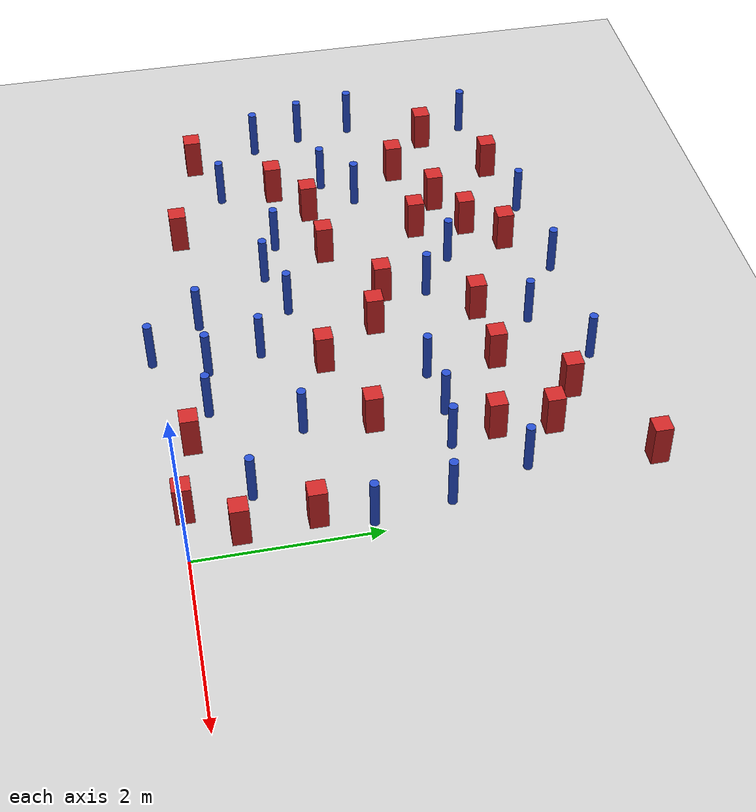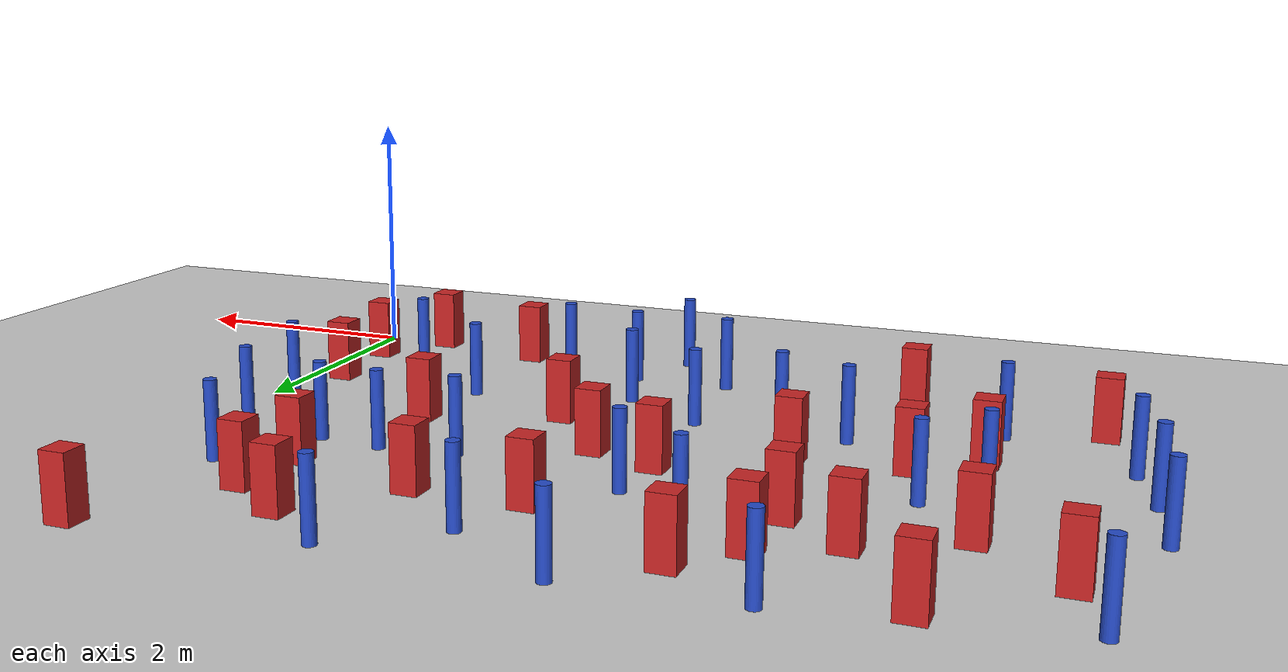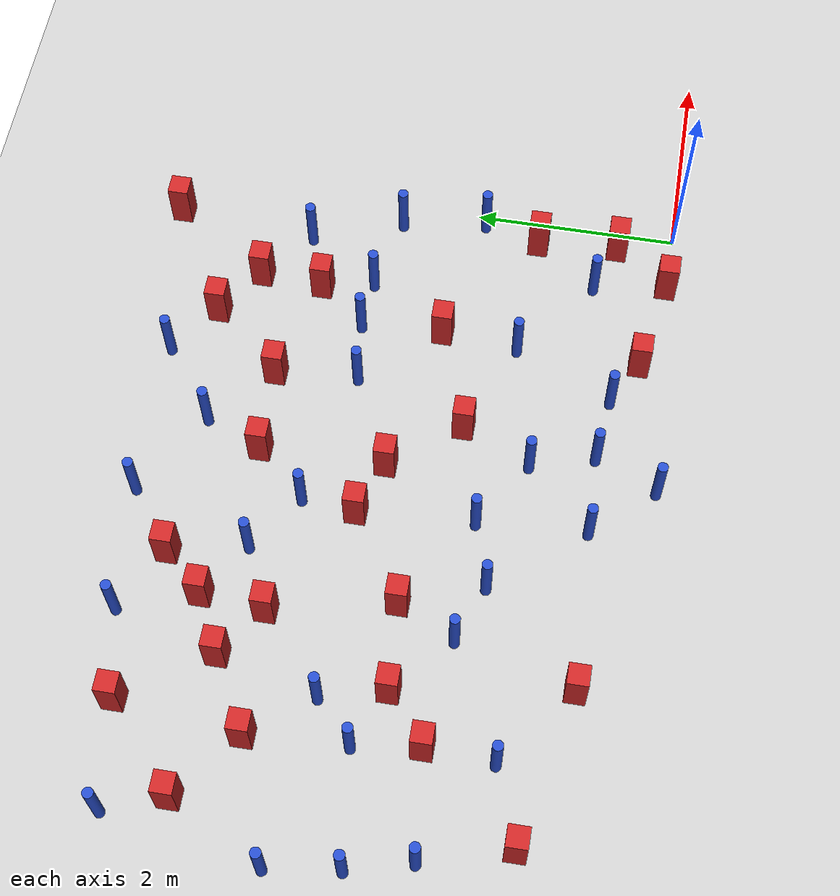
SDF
<sdf version="1.6">
 <world name="default">
  <model name="ground_plane">
   <static>1</static>
   <link name="link">
    <collision name="collision">
     <geometry><plane><normal>0 0 1</normal><size>100 100</size></plane></geometry>
     <surface><friction><ode><mu>100</mu><mu2>50</mu2></ode></friction></surface>
    </collision>
    <visual name="visual">
     <cast_shadows>0</cast_shadows>
     <geometry><plane><normal>0 0 1</normal><size>100 100</size></plane></geometry>
     <material>
      <ambient>1.0 1.0 1.0 1.0</ambient>
      <diffuse>0.8 0.8 0.8 1.0</diffuse>
      <specular>0.01 0.01 0.01 1.000000</specular>
     </material>
    </visual>
   </link>
  </model>
  <model name="NamedLocations">
   <static>true</static>
   <link name="DefaultStart"><pose>8.5 0 0 0 0 3.14</pose></link>
  </model>
  <model name="square_post_obstacle0">
   <static>true</static>
   <pose>-4.59971297543 3.89152151144 -6.11067671241e-07 -5.50515727128e-06 -8.79689657224e-07 2.37013304536e-05</pose>
   <link name="link">
    <pose>0 0 0.25 0 -0 0</pose>
    <inertial>
     <mass>100</mass>
     <inertia>
      <ixx>0.166667</ixx>
      <ixy>0</ixy>
      <ixz>0</ixz>
      <iyy>0.166667</iyy>
      <iyz>0</iyz>
      <izz>0.166667</izz>
     </inertia>
    </inertial>
    <collision name="collision"><geometry><box><size>.2 .2 .5</size></box></geometry></collision>
    <visual name="visual">
     <geometry><box><size>.2 .2 .5</size></box></geometry>
     <material>
      <script><name>Gazebo/Red</name><uri>file://media/materials/scripts/gazebo.material</uri></script>
     </material>
    </visual>
   </link>
  </model>
  <model name="square_post_obstacle5">
   <static>true</static>
   <pose>-5.14528673574 3.61344387277 -6.11067671241e-07 -5.50515727128e-06 -8.79689657224e-07 2.37013304536e-05</pose>
   <link name="link">
    <pose>0 0 0.25 0 -0 0</pose>
    <inertial>
     <mass>100</mass>
     <inertia>
      <ixx>0.166667</ixx>
      <ixy>0</ixy>
      <ixz>0</ixz>
      <iyy>0.166667</iyy>
      <iyz>0</iyz>
      <izz>0.166667</izz>
     </inertia>
    </inertial>
    <collision name="collision"><geometry><box><size>.2 .2 .5</size></box></geometry></collision>
    <visual name="visual">
     <geometry><box><size>.2 .2 .5</size></box></geometry>
     <material>
      <script><name>Gazebo/Red</name><uri>file://media/materials/scripts/gazebo.material</uri></script>
     </material>
    </visual>
   </link>
  </model>
  <model name="pole_obstacle8">
   <static>true</static>
   <pose>-5.80131505727 2.28319129758 -9.47619616065e-06 5.49618799738e-07 2.36310414051e-07 -1.55090534805e-07</pose>
   <link name="link">
    <pose>0 0 0.3 0 -0 0</pose>
    <inertial>
     <mass>1</mass>
     <inertia><ixx>0.145833</ixx><ixy>0</ixy><ixz>0</ixz><iyy>0.145833</iyy><iyz>0</iyz><izz>0.125</izz></inertia>
    </inertial>
    <collision name="collision">
     <geometry><cylinder><radius>0.05</radius><length>.6</length></cylinder></geometry>
    </collision>
    <visual name="visual">
     <geometry><cylinder><radius>0.05</radius><length>.6</length></cylinder></geometry>
     <material>
      <script><name>Gazebo/Blue</name><uri>file://media/materials/scripts/gazebo.material</uri></script>
     </material>
    </visual>
   </link>
  </model>
  <model name="square_post_obstacle17">
   <static>true</static>
   <pose>-4.97605530294 0.397946088873 -6.11067671241e-07 -5.50515727128e-06 -8.79689657224e-07 2.37013304536e-05</pose>
   <link name="link">
    <pose>0 0 0.25 0 -0 0</pose>
    <inertial>
     <mass>100</mass>
     <inertia>
      <ixx>0.166667</ixx>
      <ixy>0</ixy>
      <ixz>0</ixz>
      <iyy>0.166667</iyy>
      <iyz>0</iyz>
      <izz>0.166667</izz>
     </inertia>
    </inertial>
    <collision name="collision"><geometry><box><size>.2 .2 .5</size></box></geometry></collision>
    <visual name="visual">
     <geometry><box><size>.2 .2 .5</size></box></geometry>
     <material>
      <script><name>Gazebo/Red</name><uri>file://media/materials/scripts/gazebo.material</uri></script>
     </material>
    </visual>
   </link>
  </model>
  <model name="pole_obstacle10">
   <static>true</static>
   <pose>-0.569666834816 3.63471088129 -9.47619616065e-06 5.49618799737e-07 2.36310414066e-07 -1.55090534797e-07</pose>
   <link name="link">
    <pose>0 0 0.3 0 -0 0</pose>
    <inertial>
     <mass>1</mass>
     <inertia><ixx>0.145833</ixx><ixy>0</ixy><ixz>0</ixz><iyy>0.145833</iyy><iyz>0</iyz><izz>0.125</izz></inertia>
    </inertial>
    <collision name="collision">
     <geometry><cylinder><radius>0.05</radius><length>.6</length></cylinder></geometry>
    </collision>
    <visual name="visual">
     <geometry><cylinder><radius>0.05</radius><length>.6</length></cylinder></geometry>
     <material>
      <script><name>Gazebo/Blue</name><uri>file://media/materials/scripts/gazebo.material</uri></script>
     </material>
    </visual>
   </link>
  </model>
  <model name="square_post_obstacle26">
   <static>true</static>
   <pose>-1.48058931634 2.1476353197 -6.11067671241e-07 -5.50515727128e-06 -8.79689657224e-07 2.37013304536e-05</pose>
   <link name="link">
    <pose>0 0 0.25 0 -0 0</pose>
    <inertial>
     <mass>100</mass>
     <inertia>
      <ixx>0.166667</ixx>
      <ixy>0</ixy>
      <ixz>0</ixz>
      <iyy>0.166667</iyy>
      <iyz>0</iyz>
      <izz>0.166667</izz>
     </inertia>
    </inertial>
    <collision name="collision"><geometry><box><size>.2 .2 .5</size></box></geometry></collision>
    <visual name="visual">
     <geometry><box><size>.2 .2 .5</size></box></geometry>
     <material>
      <script><name>Gazebo/Red</name><uri>file://media/materials/scripts/gazebo.material</uri></script>
     </material>
    </visual>
   </link>
  </model>
  <model name="square_post_obstacle28">
   <static>true</static>
   <pose>-5.69607947928 4.42945014952 -6.11067671241e-07 -5.50515727128e-06 -8.79689657224e-07 2.37013304536e-05</pose>
   <link name="link">
    <pose>0 0 0.25 0 -0 0</pose>
    <inertial>
     <mass>100</mass>
     <inertia>
      <ixx>0.166667</ixx>
      <ixy>0</ixy>
      <ixz>0</ixz>
      <iyy>0.166667</iyy>
      <iyz>0</iyz>
      <izz>0.166667</izz>
     </inertia>
    </inertial>
    <collision name="collision"><geometry><box><size>.2 .2 .5</size></box></geometry></collision>
    <visual name="visual">
     <geometry><box><size>.2 .2 .5</size></box></geometry>
     <material>
      <script><name>Gazebo/Red</name><uri>file://media/materials/scripts/gazebo.material</uri></script>
     </material>
    </visual>
   </link>
  </model>
  <model name="square_post_obstacle29">
   <static>true</static>
   <pose>-4.40070211339 2.09543112315 -6.11067671241e-07 -5.50515727128e-06 -8.79689657224e-07 2.37013304536e-05</pose>
   <link name="link">
    <pose>0 0 0.25 0 -0 0</pose>
    <inertial>
     <mass>100</mass>
     <inertia>
      <ixx>0.166667</ixx>
      <ixy>0</ixy>
      <ixz>0</ixz>
      <iyy>0.166667</iyy>
      <iyz>0</iyz>
      <izz>0.166667</izz>
     </inertia>
    </inertial>
    <collision name="collision"><geometry><box><size>.2 .2 .5</size></box></geometry></collision>
    <visual name="visual">
     <geometry><box><size>.2 .2 .5</size></box></geometry>
     <material>
      <script><name>Gazebo/Red</name><uri>file://media/materials/scripts/gazebo.material</uri></script>
     </material>
    </visual>
   </link>
  </model>
  <model name="square_post_obstacle31">
   <static>true</static>
   <pose>-5.23875331345 2.03464342423 -6.11067671241e-07 -5.50515727128e-06 -8.79689657224e-07 2.37013304536e-05</pose>
   <link name="link">
    <pose>0 0 0.25 0 -0 0</pose>
    <inertial>
     <mass>100</mass>
     <inertia>
      <ixx>0.166667</ixx>
      <ixy>0</ixy>
      <ixz>0</ixz>
      <iyy>0.166667</iyy>
      <iyz>0</iyz>
      <izz>0.166667</izz>
     </inertia>
    </inertial>
    <collision name="collision"><geometry><box><size>.2 .2 .5</size></box></geometry></collision>
    <visual name="visual">
     <geometry><box><size>.2 .2 .5</size></box></geometry>
     <material>
      <script><name>Gazebo/Red</name><uri>file://media/materials/scripts/gazebo.material</uri></script>
     </material>
    </visual>
   </link>
  </model>
  <model name="pole_obstacle25">
   <static>true</static>
   <pose>-4.68158163636 1.53399339681 -9.47619616065e-06 5.49618799738e-07 2.36310414071e-07 -1.55090534796e-07</pose>
   <link name="link">
    <pose>0 0 0.3 0 -0 0</pose>
    <inertial>
     <mass>1</mass>
     <inertia><ixx>0.145833</ixx><ixy>0</ixy><ixz>0</ixz><iyy>0.145833</iyy><iyz>0</iyz><izz>0.125</izz></inertia>
    </inertial>
    <collision name="collision">
     <geometry><cylinder><radius>0.05</radius><length>.6</length></cylinder></geometry>
    </collision>
    <visual name="visual">
     <geometry><cylinder><radius>0.05</radius><length>.6</length></cylinder></geometry>
     <material>
      <script><name>Gazebo/Blue</name><uri>file://media/materials/scripts/gazebo.material</uri></script>
     </material>
    </visual>
   </link>
  </model>
  <model name="pole_obstacle30">
   <static>true</static>
   <pose>-2.64074661271 0.489076026434 -9.47619616065e-06 5.49618799737e-07 2.36310414078e-07 -1.55090534791e-07</pose>
   <link name="link">
    <pose>0 0 0.3 0 -0 0</pose>
    <inertial>
     <mass>1</mass>
     <inertia><ixx>0.145833</ixx><ixy>0</ixy><ixz>0</ixz><iyy>0.145833</iyy><iyz>0</iyz><izz>0.125</izz></inertia>
    </inertial>
    <collision name="collision">
     <geometry><cylinder><radius>0.05</radius><length>.6</length></cylinder></geometry>
    </collision>
    <visual name="visual">
     <geometry><cylinder><radius>0.05</radius><length>.6</length></cylinder></geometry>
     <material>
      <script><name>Gazebo/Blue</name><uri>file://media/materials/scripts/gazebo.material</uri></script>
     </material>
    </visual>
   </link>
  </model>
  <model name="pole_obstacle31">
   <static>true</static>
   <pose>-6.87298063366 2.15020737367 -9.47619616065e-06 5.49618799738e-07 2.36310414051e-07 -1.55090534805e-07</pose>
   <link name="link">
    <pose>0 0 0.3 0 -0 0</pose>
    <inertial>
     <mass>1</mass>
     <inertia><ixx>0.145833</ixx><ixy>0</ixy><ixz>0</ixz><iyy>0.145833</iyy><iyz>0</iyz><izz>0.125</izz></inertia>
    </inertial>
    <collision name="collision">
     <geometry><cylinder><radius>0.05</radius><length>.6</length></cylinder></geometry>
    </collision>
    <visual name="visual">
     <geometry><cylinder><radius>0.05</radius><length>.6</length></cylinder></geometry>
     <material>
      <script><name>Gazebo/Blue</name><uri>file://media/materials/scripts/gazebo.material</uri></script>
     </material>
    </visual>
   </link>
  </model>
  <model name="square_post_obstacle38">
   <static>true</static>
   <pose>-1.1324689584 3.42243651199 -6.11067671241e-07 -5.50515727128e-06 -8.79689657224e-07 2.37013304536e-05</pose>
   <link name="link">
    <pose>0 0 0.25 0 -0 0</pose>
    <inertial>
     <mass>100</mass>
     <inertia>
      <ixx>0.166667</ixx>
      <ixy>0</ixy>
      <ixz>0</ixz>
      <iyy>0.166667</iyy>
      <iyz>0</iyz>
      <izz>0.166667</izz>
     </inertia>
    </inertial>
    <collision name="collision"><geometry><box><size>.2 .2 .5</size></box></geometry></collision>
    <visual name="visual">
     <geometry><box><size>.2 .2 .5</size></box></geometry>
     <material>
      <script><name>Gazebo/Red</name><uri>file://media/materials/scripts/gazebo.material</uri></script>
     </material>
    </visual>
   </link>
  </model>
  <model name="pole_obstacle43">
   <static>true</static>
   <pose>-3.64300508304 4.73870815015 -9.47619616065e-06 5.49618799738e-07 2.3631041406e-07 -1.55090534801e-07</pose>
   <link name="link">
    <pose>0 0 0.3 0 -0 0</pose>
    <inertial>
     <mass>1</mass>
     <inertia><ixx>0.145833</ixx><ixy>0</ixy><ixz>0</ixz><iyy>0.145833</iyy><iyz>0</iyz><izz>0.125</izz></inertia>
    </inertial>
    <collision name="collision">
     <geometry><cylinder><radius>0.05</radius><length>.6</length></cylinder></geometry>
    </collision>
    <visual name="visual">
     <geometry><cylinder><radius>0.05</radius><length>.6</length></cylinder></geometry>
     <material>
      <script><name>Gazebo/Blue</name><uri>file://media/materials/scripts/gazebo.material</uri></script>
     </material>
    </visual>
   </link>
  </model>
  <model name="pole_obstacle49">
   <static>true</static>
   <pose>-3.49157227733 1.51842171549 -9.47619616065e-06 5.49618799737e-07 2.36310414072e-07 -1.55090534793e-07</pose>
   <link name="link">
    <pose>0 0 0.3 0 -0 0</pose>
    <inertial>
     <mass>1</mass>
     <inertia><ixx>0.145833</ixx><ixy>0</ixy><ixz>0</ixz><iyy>0.145833</iyy><iyz>0</iyz><izz>0.125</izz></inertia>
    </inertial>
    <collision name="collision">
     <geometry><cylinder><radius>0.05</radius><length>.6</length></cylinder></geometry>
    </collision>
    <visual name="visual">
     <geometry><cylinder><radius>0.05</radius><length>.6</length></cylinder></geometry>
     <material>
      <script><name>Gazebo/Blue</name><uri>file://media/materials/scripts/gazebo.material</uri></script>
     </material>
    </visual>
   </link>
  </model>
  <model name="square_post_obstacle52">
   <static>true</static>
   <pose>-2.19287133885 3.68582690883 -6.11067671241e-07 -5.50515727128e-06 -8.79689657224e-07 2.37013304536e-05</pose>
   <link name="link">
    <pose>0 0 0.25 0 -0 0</pose>
    <inertial>
     <mass>100</mass>
     <inertia>
      <ixx>0.166667</ixx>
      <ixy>0</ixy>
      <ixz>0</ixz>
      <iyy>0.166667</iyy>
      <iyz>0</iyz>
      <izz>0.166667</izz>
     </inertia>
    </inertial>
    <collision name="collision"><geometry><box><size>.2 .2 .5</size></box></geometry></collision>
    <visual name="visual">
     <geometry><box><size>.2 .2 .5</size></box></geometry>
     <material>
      <script><name>Gazebo/Red</name><uri>file://media/materials/scripts/gazebo.material</uri></script>
     </material>
    </visual>
   </link>
  </model>
  <model name="square_post_obstacle55">
   <static>true</static>
   <pose>-3.03954669328 3.66126182749 -6.11067671241e-07 -5.50515727128e-06 -8.79689657224e-07 2.37013304536e-05</pose>
   <link name="link">
    <pose>0 0 0.25 0 -0 0</pose>
    <inertial>
     <mass>100</mass>
     <inertia>
      <ixx>0.166667</ixx>
      <ixy>0</ixy>
      <ixz>0</ixz>
      <iyy>0.166667</iyy>
      <iyz>0</iyz>
      <izz>0.166667</izz>
     </inertia>
    </inertial>
    <collision name="collision"><geometry><box><size>.2 .2 .5</size></box></geometry></collision>
    <visual name="visual">
     <geometry><box><size>.2 .2 .5</size></box></geometry>
     <material>
      <script><name>Gazebo/Red</name><uri>file://media/materials/scripts/gazebo.material</uri></script>
     </material>
    </visual>
   </link>
  </model>
  <model name="pole_obstacle54">
   <static>true</static>
   <pose>-0.133966401994 1.90876942471 -9.47619616065e-06 5.49618799737e-07 2.36310414067e-07 -1.55090534796e-07</pose>
   <link name="link">
    <pose>0 0 0.3 0 -0 0</pose>
    <inertial>
     <mass>1</mass>
     <inertia><ixx>0.145833</ixx><ixy>0</ixy><ixz>0</ixz><iyy>0.145833</iyy><iyz>0</iyz><izz>0.125</izz></inertia>
    </inertial>
    <collision name="collision">
     <geometry><cylinder><radius>0.05</radius><length>.6</length></cylinder></geometry>
    </collision>
    <visual name="visual">
     <geometry><cylinder><radius>0.05</radius><length>.6</length></cylinder></geometry>
     <material>
      <script><name>Gazebo/Blue</name><uri>file://media/materials/scripts/gazebo.material</uri></script>
     </material>
    </visual>
   </link>
  </model>
  <model name="square_post_obstacle61">
   <static>true</static>
   <pose>-2.50411360714 1.7824135233 -6.11067671241e-07 -5.50515727128e-06 -8.79689657224e-07 2.37013304536e-05</pose>
   <link name="link">
    <pose>0 0 0.25 0 -0 0</pose>
    <inertial>
     <mass>100</mass>
     <inertia>
      <ixx>0.166667</ixx>
      <ixy>0</ixy>
      <ixz>0</ixz>
      <iyy>0.166667</iyy>
      <iyz>0</iyz>
      <izz>0.166667</izz>
     </inertia>
    </inertial>
    <collision name="collision"><geometry><box><size>.2 .2 .5</size></box></geometry></collision>
    <visual name="visual">
     <geometry><box><size>.2 .2 .5</size></box></geometry>
     <material>
      <script><name>Gazebo/Red</name><uri>file://media/materials/scripts/gazebo.material</uri></script>
     </material>
    </visual>
   </link>
  </model>
  <model name="pole_obstacle62">
   <static>true</static>
   <pose>-2.00084403822 0.423986107459 -9.47619616065e-06 5.49618799737e-07 2.36310414054e-07 -1.55090534804e-07</pose>
   <link name="link">
    <pose>0 0 0.3 0 -0 0</pose>
    <inertial>
     <mass>1</mass>
     <inertia><ixx>0.145833</ixx><ixy>0</ixy><ixz>0</ixz><iyy>0.145833</iyy><iyz>0</iyz><izz>0.125</izz></inertia>
    </inertial>
    <collision name="collision">
     <geometry><cylinder><radius>0.05</radius><length>.6</length></cylinder></geometry>
    </collision>
    <visual name="visual">
     <geometry><cylinder><radius>0.05</radius><length>.6</length></cylinder></geometry>
     <material>
      <script><name>Gazebo/Blue</name><uri>file://media/materials/scripts/gazebo.material</uri></script>
     </material>
    </visual>
   </link>
  </model>
  <model name="pole_obstacle63">
   <static>true</static>
   <pose>-1.02468744815 2.91695565741 -9.47619616065e-06 5.49618799737e-07 2.36310414065e-07 -1.55090534797e-07</pose>
   <link name="link">
    <pose>0 0 0.3 0 -0 0</pose>
    <inertial>
     <mass>1</mass>
     <inertia><ixx>0.145833</ixx><ixy>0</ixy><ixz>0</ixz><iyy>0.145833</iyy><iyz>0</iyz><izz>0.125</izz></inertia>
    </inertial>
    <collision name="collision">
     <geometry><cylinder><radius>0.05</radius><length>.6</length></cylinder></geometry>
    </collision>
    <visual name="visual">
     <geometry><cylinder><radius>0.05</radius><length>.6</length></cylinder></geometry>
     <material>
      <script><name>Gazebo/Blue</name><uri>file://media/materials/scripts/gazebo.material</uri></script>
     </material>
    </visual>
   </link>
  </model>
  <model name="pole_obstacle65">
   <static>true</static>
   <pose>-2.80371094981 4.23101784018 -9.47619616065e-06 5.49618799738e-07 2.3631041406e-07 -1.55090534801e-07</pose>
   <link name="link">
    <pose>0 0 0.3 0 -0 0</pose>
    <inertial>
     <mass>1</mass>
     <inertia><ixx>0.145833</ixx><ixy>0</ixy><ixz>0</ixz><iyy>0.145833</iyy><iyz>0</iyz><izz>0.125</izz></inertia>
    </inertial>
    <collision name="collision">
     <geometry><cylinder><radius>0.05</radius><length>.6</length></cylinder></geometry>
    </collision>
    <visual name="visual">
     <geometry><cylinder><radius>0.05</radius><length>.6</length></cylinder></geometry>
     <material>
      <script><name>Gazebo/Blue</name><uri>file://media/materials/scripts/gazebo.material</uri></script>
     </material>
    </visual>
   </link>
  </model>
  <model name="square_post_obstacle68">
   <static>true</static>
   <pose>-0.216083660531 0.551346085647 -6.11067671241e-07 -5.50515727128e-06 -8.79689657224e-07 2.37013304536e-05</pose>
   <link name="link">
    <pose>0 0 0.25 0 -0 0</pose>
    <inertial>
     <mass>100</mass>
     <inertia>
      <ixx>0.166667</ixx>
      <ixy>0</ixy>
      <ixz>0</ixz>
      <iyy>0.166667</iyy>
      <iyz>0</iyz>
      <izz>0.166667</izz>
     </inertia>
    </inertial>
    <collision name="collision"><geometry><box><size>.2 .2 .5</size></box></geometry></collision>
    <visual name="visual">
     <geometry><box><size>.2 .2 .5</size></box></geometry>
     <material>
      <script><name>Gazebo/Red</name><uri>file://media/materials/scripts/gazebo.material</uri></script>
     </material>
    </visual>
   </link>
  </model>
  <model name="square_post_obstacle82">
   <static>true</static>
   <pose>-6.48487543336 3.73737414708 -6.11067671241e-07 -5.50515727128e-06 -8.79689657224e-07 2.37013304536e-05</pose>
   <link name="link">
    <pose>0 0 0.25 0 -0 0</pose>
    <inertial>
     <mass>100</mass>
     <inertia>
      <ixx>0.166667</ixx>
      <ixy>0</ixy>
      <ixz>0</ixz>
      <iyy>0.166667</iyy>
      <iyz>0</iyz>
      <izz>0.166667</izz>
     </inertia>
    </inertial>
    <collision name="collision"><geometry><box><size>.2 .2 .5</size></box></geometry></collision>
    <visual name="visual">
     <geometry><box><size>.2 .2 .5</size></box></geometry>
     <material>
      <script><name>Gazebo/Red</name><uri>file://media/materials/scripts/gazebo.material</uri></script>
     </material>
    </visual>
   </link>
  </model>
  <model name="pole_obstacle92">
   <static>true</static>
   <pose>-6.71229319077 1.55066217229 -9.47619616065e-06 5.49618799738e-07 2.36310414071e-07 -1.55090534796e-07</pose>
   <link name="link">
    <pose>0 0 0.3 0 -0 0</pose>
    <inertial>
     <mass>1</mass>
     <inertia><ixx>0.145833</ixx><ixy>0</ixy><ixz>0</ixz><iyy>0.145833</iyy><iyz>0</iyz><izz>0.125</izz></inertia>
    </inertial>
    <collision name="collision">
     <geometry><cylinder><radius>0.05</radius><length>.6</length></cylinder></geometry>
    </collision>
    <visual name="visual">
     <geometry><cylinder><radius>0.05</radius><length>.6</length></cylinder></geometry>
     <material>
      <script><name>Gazebo/Blue</name><uri>file://media/materials/scripts/gazebo.material</uri></script>
     </material>
    </visual>
   </link>
  </model>
  <model name="square_post_obstacle86">
   <static>true</static>
   <pose>-0.597467560108 0.0175938911752 -6.11067671241e-07 -5.50515727128e-06 -8.79689657224e-07 2.37013304536e-05</pose>
   <link name="link">
    <pose>0 0 0.25 0 -0 0</pose>
    <inertial>
     <mass>100</mass>
     <inertia>
      <ixx>0.166667</ixx>
      <ixy>0</ixy>
      <ixz>0</ixz>
      <iyy>0.166667</iyy>
      <iyz>0</iyz>
      <izz>0.166667</izz>
     </inertia>
    </inertial>
    <collision name="collision"><geometry><box><size>.2 .2 .5</size></box></geometry></collision>
    <visual name="visual">
     <geometry><box><size>.2 .2 .5</size></box></geometry>
     <material>
      <script><name>Gazebo/Red</name><uri>file://media/materials/scripts/gazebo.material</uri></script>
     </material>
    </visual>
   </link>
  </model>
  <model name="square_post_obstacle88">
   <static>true</static>
   <pose>-5.84570206407 3.22867126955 -6.11067671241e-07 -5.50515727128e-06 -8.79689657224e-07 2.37013304536e-05</pose>
   <link name="link">
    <pose>0 0 0.25 0 -0 0</pose>
    <inertial>
     <mass>100</mass>
     <inertia>
      <ixx>0.166667</ixx>
      <ixy>0</ixy>
      <ixz>0</ixz>
      <iyy>0.166667</iyy>
      <iyz>0</iyz>
      <izz>0.166667</izz>
     </inertia>
    </inertial>
    <collision name="collision"><geometry><box><size>.2 .2 .5</size></box></geometry></collision>
    <visual name="visual">
     <geometry><box><size>.2 .2 .5</size></box></geometry>
     <material>
      <script><name>Gazebo/Red</name><uri>file://media/materials/scripts/gazebo.material</uri></script>
     </material>
    </visual>
   </link>
  </model>
  <model name="square_post_obstacle89">
   <static>true</static>
   <pose>-1.57282949994 4.38494837364 -6.11067671241e-07 -5.50515727128e-06 -8.79689657224e-07 2.37013304536e-05</pose>
   <link name="link">
    <pose>0 0 0.25 0 -0 0</pose>
    <inertial>
     <mass>100</mass>
     <inertia>
      <ixx>0.166667</ixx>
      <ixy>0</ixy>
      <ixz>0</ixz>
      <iyy>0.166667</iyy>
      <iyz>0</iyz>
      <izz>0.166667</izz>
     </inertia>
    </inertial>
    <collision name="collision"><geometry><box><size>.2 .2 .5</size></box></geometry></collision>
    <visual name="visual">
     <geometry><box><size>.2 .2 .5</size></box></geometry>
     <material>
      <script><name>Gazebo/Red</name><uri>file://media/materials/scripts/gazebo.material</uri></script>
     </material>
    </visual>
   </link>
  </model>
  <model name="pole_obstacle109">
   <static>true</static>
   <pose>-2.90536421369 -0.117505198133 -9.47619616065e-06 5.49618799737e-07 2.36310414068e-07 -1.55090534797e-07</pose>
   <link name="link">
    <pose>0 0 0.3 0 -0 0</pose>
    <inertial>
     <mass>1</mass>
     <inertia><ixx>0.145833</ixx><ixy>0</ixy><ixz>0</ixz><iyy>0.145833</iyy><iyz>0</iyz><izz>0.125</izz></inertia>
    </inertial>
    <collision name="collision">
     <geometry><cylinder><radius>0.05</radius><length>.6</length></cylinder></geometry>
    </collision>
    <visual name="visual">
     <geometry><cylinder><radius>0.05</radius><length>.6</length></cylinder></geometry>
     <material>
      <script><name>Gazebo/Blue</name><uri>file://media/materials/scripts/gazebo.material</uri></script>
     </material>
    </visual>
   </link>
  </model>
  <model name="pole_obstacle112">
   <static>true</static>
   <pose>-6.70151088171 4.31013806834 -9.47619616065e-06 5.49618799737e-07 2.36310414037e-07 -1.55090534814e-07</pose>
   <link name="link">
    <pose>0 0 0.3 0 -0 0</pose>
    <inertial>
     <mass>1</mass>
     <inertia><ixx>0.145833</ixx><ixy>0</ixy><ixz>0</ixz><iyy>0.145833</iyy><iyz>0</iyz><izz>0.125</izz></inertia>
    </inertial>
    <collision name="collision">
     <geometry><cylinder><radius>0.05</radius><length>.6</length></cylinder></geometry>
    </collision>
    <visual name="visual">
     <geometry><cylinder><radius>0.05</radius><length>.6</length></cylinder></geometry>
     <material>
      <script><name>Gazebo/Blue</name><uri>file://media/materials/scripts/gazebo.material</uri></script>
     </material>
    </visual>
   </link>
  </model>
  <model name="pole_obstacle114">
   <static>true</static>
   <pose>-4.06555836829 3.55734065412 -9.47619616065e-06 5.49618799738e-07 2.36310414051e-07 -1.55090534805e-07</pose>
   <link name="link">
    <pose>0 0 0.3 0 -0 0</pose>
    <inertial>
     <mass>1</mass>
     <inertia><ixx>0.145833</ixx><ixy>0</ixy><ixz>0</ixz><iyy>0.145833</iyy><iyz>0</iyz><izz>0.125</izz></inertia>
    </inertial>
    <collision name="collision">
     <geometry><cylinder><radius>0.05</radius><length>.6</length></cylinder></geometry>
    </collision>
    <visual name="visual">
     <geometry><cylinder><radius>0.05</radius><length>.6</length></cylinder></geometry>
     <material>
      <script><name>Gazebo/Blue</name><uri>file://media/materials/scripts/gazebo.material</uri></script>
     </material>
    </visual>
   </link>
  </model>
  <model name="square_post_obstacle104">
   <static>true</static>
   <pose>-5.70703860972 1.65454598575 -6.11067671241e-07 -5.50515727128e-06 -8.79689657224e-07 2.37013304536e-05</pose>
   <link name="link">
    <pose>0 0 0.25 0 -0 0</pose>
    <inertial>
     <mass>100</mass>
     <inertia>
      <ixx>0.166667</ixx>
      <ixy>0</ixy>
      <ixz>0</ixz>
      <iyy>0.166667</iyy>
      <iyz>0</iyz>
      <izz>0.166667</izz>
     </inertia>
    </inertial>
    <collision name="collision"><geometry><box><size>.2 .2 .5</size></box></geometry></collision>
    <visual name="visual">
     <geometry><box><size>.2 .2 .5</size></box></geometry>
     <material>
      <script><name>Gazebo/Red</name><uri>file://media/materials/scripts/gazebo.material</uri></script>
     </material>
    </visual>
   </link>
  </model>
  <model name="square_post_obstacle111">
   <static>true</static>
   <pose>-1.54143619931 0.19033529108 -6.11067671241e-07 -5.50515727128e-06 -8.79689657224e-07 2.37013304536e-05</pose>
   <link name="link">
    <pose>0 0 0.25 0 -0 0</pose>
    <inertial>
     <mass>100</mass>
     <inertia>
      <ixx>0.166667</ixx>
      <ixy>0</ixy>
      <ixz>0</ixz>
      <iyy>0.166667</iyy>
      <iyz>0</iyz>
      <izz>0.166667</izz>
     </inertia>
    </inertial>
    <collision name="collision"><geometry><box><size>.2 .2 .5</size></box></geometry></collision>
    <visual name="visual">
     <geometry><box><size>.2 .2 .5</size></box></geometry>
     <material>
      <script><name>Gazebo/Red</name><uri>file://media/materials/scripts/gazebo.material</uri></script>
     </material>
    </visual>
   </link>
  </model>
  <model name="pole_obstacle122">
   <static>true</static>
   <pose>-5.75113288412 1.00137331003 -9.47619616065e-06 5.49618799737e-07 2.36310414071e-07 -1.55090534795e-07</pose>
   <link name="link">
    <pose>0 0 0.3 0 -0 0</pose>
    <inertial>
     <mass>1</mass>
     <inertia><ixx>0.145833</ixx><ixy>0</ixy><ixz>0</ixz><iyy>0.145833</iyy><iyz>0</iyz><izz>0.125</izz></inertia>
    </inertial>
    <collision name="collision">
     <geometry><cylinder><radius>0.05</radius><length>.6</length></cylinder></geometry>
    </collision>
    <visual name="visual">
     <geometry><cylinder><radius>0.05</radius><length>.6</length></cylinder></geometry>
     <material>
      <script><name>Gazebo/Blue</name><uri>file://media/materials/scripts/gazebo.material</uri></script>
     </material>
    </visual>
   </link>
  </model>
  <model name="pole_obstacle126">
   <static>true</static>
   <pose>-4.12349589626 1.32831586725 -9.47619616065e-06 5.49618799738e-07 2.36310414071e-07 -1.55090534796e-07</pose>
   <link name="link">
    <pose>0 0 0.3 0 -0 0</pose>
    <inertial>
     <mass>1</mass>
     <inertia><ixx>0.145833</ixx><ixy>0</ixy><ixz>0</ixz><iyy>0.145833</iyy><iyz>0</iyz><izz>0.125</izz></inertia>
    </inertial>
    <collision name="collision">
     <geometry><cylinder><radius>0.05</radius><length>.6</length></cylinder></geometry>
    </collision>
    <visual name="visual">
     <geometry><cylinder><radius>0.05</radius><length>.6</length></cylinder></geometry>
     <material>
      <script><name>Gazebo/Blue</name><uri>file://media/materials/scripts/gazebo.material</uri></script>
     </material>
    </visual>
   </link>
  </model>
  <model name="square_post_obstacle113">
   <static>true</static>
   <pose>-4.6598772792 3.27193041467 -6.11067671241e-07 -5.50515727128e-06 -8.79689657224e-07 2.37013304536e-05</pose>
   <link name="link">
    <pose>0 0 0.25 0 -0 0</pose>
    <inertial>
     <mass>100</mass>
     <inertia>
      <ixx>0.166667</ixx>
      <ixy>0</ixy>
      <ixz>0</ixz>
      <iyy>0.166667</iyy>
      <iyz>0</iyz>
      <izz>0.166667</izz>
     </inertia>
    </inertial>
    <collision name="collision"><geometry><box><size>.2 .2 .5</size></box></geometry></collision>
    <visual name="visual">
     <geometry><box><size>.2 .2 .5</size></box></geometry>
     <material>
      <script><name>Gazebo/Red</name><uri>file://media/materials/scripts/gazebo.material</uri></script>
     </material>
    </visual>
   </link>
  </model>
  <model name="pole_obstacle131">
   <static>true</static>
   <pose>-2.08488166311 4.76417881594 -9.47619616065e-06 5.49618799738e-07 2.3631041406e-07 -1.55090534801e-07</pose>
   <link name="link">
    <pose>0 0 0.3 0 -0 0</pose>
    <inertial>
     <mass>1</mass>
     <inertia><ixx>0.145833</ixx><ixy>0</ixy><ixz>0</ixz><iyy>0.145833</iyy><iyz>0</iyz><izz>0.125</izz></inertia>
    </inertial>
    <collision name="collision">
     <geometry><cylinder><radius>0.05</radius><length>.6</length></cylinder></geometry>
    </collision>
    <visual name="visual">
     <geometry><cylinder><radius>0.05</radius><length>.6</length></cylinder></geometry>
     <material>
      <script><name>Gazebo/Blue</name><uri>file://media/materials/scripts/gazebo.material</uri></script>
     </material>
    </visual>
   </link>
  </model>
  <model name="pole_obstacle134">
   <static>true</static>
   <pose>-2.13111516903 2.88403232675 -9.47619616065e-06 5.49618799737e-07 2.36310414051e-07 -1.55090534807e-07</pose>
   <link name="link">
    <pose>0 0 0.3 0 -0 0</pose>
    <inertial>
     <mass>1</mass>
     <inertia><ixx>0.145833</ixx><ixy>0</ixy><ixz>0</ixz><iyy>0.145833</iyy><iyz>0</iyz><izz>0.125</izz></inertia>
    </inertial>
    <collision name="collision">
     <geometry><cylinder><radius>0.05</radius><length>.6</length></cylinder></geometry>
    </collision>
    <visual name="visual">
     <geometry><cylinder><radius>0.05</radius><length>.6</length></cylinder></geometry>
     <material>
      <script><name>Gazebo/Blue</name><uri>file://media/materials/scripts/gazebo.material</uri></script>
     </material>
    </visual>
   </link>
  </model>
  <model name="square_post_obstacle120">
   <static>true</static>
   <pose>-4.22483972808 4.28926634013 -6.11067671241e-07 -5.50515727128e-06 -8.79689657224e-07 2.37013304536e-05</pose>
   <link name="link">
    <pose>0 0 0.25 0 -0 0</pose>
    <inertial>
     <mass>100</mass>
     <inertia>
      <ixx>0.166667</ixx>
      <ixy>0</ixy>
      <ixz>0</ixz>
      <iyy>0.166667</iyy>
      <iyz>0</iyz>
      <izz>0.166667</izz>
     </inertia>
    </inertial>
    <collision name="collision"><geometry><box><size>.2 .2 .5</size></box></geometry></collision>
    <visual name="visual">
     <geometry><box><size>.2 .2 .5</size></box></geometry>
     <material>
      <script><name>Gazebo/Red</name><uri>file://media/materials/scripts/gazebo.material</uri></script>
     </material>
    </visual>
   </link>
  </model>
  <model name="square_post_obstacle122">
   <static>true</static>
   <pose>-1.08555120427 4.04464171408 -6.11067671241e-07 -5.50515727128e-06 -8.79689657224e-07 2.37013304536e-05</pose>
   <link name="link">
    <pose>0 0 0.25 0 -0 0</pose>
    <inertial>
     <mass>100</mass>
     <inertia>
      <ixx>0.166667</ixx>
      <ixy>0</ixy>
      <ixz>0</ixz>
      <iyy>0.166667</iyy>
      <iyz>0</iyz>
      <izz>0.166667</izz>
     </inertia>
    </inertial>
    <collision name="collision"><geometry><box><size>.2 .2 .5</size></box></geometry></collision>
    <visual name="visual">
     <geometry><box><size>.2 .2 .5</size></box></geometry>
     <material>
      <script><name>Gazebo/Red</name><uri>file://media/materials/scripts/gazebo.material</uri></script>
     </material>
    </visual>
   </link>
  </model>
  <model name="square_post_obstacle142">
   <static>true</static>
   <pose>-0.280557697671 1.34776134888 -6.11067671241e-07 -5.50515727128e-06 -8.79689657224e-07 2.37013304536e-05</pose>
   <link name="link">
    <pose>0 0 0.25 0 -0 0</pose>
    <inertial>
     <mass>100</mass>
     <inertia>
      <ixx>0.166667</ixx>
      <ixy>0</ixy>
      <ixz>0</ixz>
      <iyy>0.166667</iyy>
      <iyz>0</iyz>
      <izz>0.166667</izz>
     </inertia>
    </inertial>
    <collision name="collision"><geometry><box><size>.2 .2 .5</size></box></geometry></collision>
    <visual name="visual">
     <geometry><box><size>.2 .2 .5</size></box></geometry>
     <material>
      <script><name>Gazebo/Red</name><uri>file://media/materials/scripts/gazebo.material</uri></script>
     </material>
    </visual>
   </link>
  </model>
  <model name="pole_obstacle156">
   <static>true</static>
   <pose>-6.96511020776 2.83020782645 -9.47619616065e-06 5.49618799738e-07 2.36310414051e-07 -1.55090534805e-07</pose>
   <link name="link">
    <pose>0 0 0.3 0 -0 0</pose>
    <inertial>
     <mass>1</mass>
     <inertia><ixx>0.145833</ixx><ixy>0</ixy><ixz>0</ixz><iyy>0.145833</iyy><iyz>0</iyz><izz>0.125</izz></inertia>
    </inertial>
    <collision name="collision">
     <geometry><cylinder><radius>0.05</radius><length>.6</length></cylinder></geometry>
    </collision>
    <visual name="visual">
     <geometry><cylinder><radius>0.05</radius><length>.6</length></cylinder></geometry>
     <material>
      <script><name>Gazebo/Blue</name><uri>file://media/materials/scripts/gazebo.material</uri></script>
     </material>
    </visual>
   </link>
  </model>
  <model name="pole_obstacle158">
   <static>true</static>
   <pose>-3.42250788535 0.466013598088 -9.47619616065e-06 5.49618799737e-07 2.36310414032e-07 -1.55090534818e-07</pose>
   <link name="link">
    <pose>0 0 0.3 0 -0 0</pose>
    <inertial>
     <mass>1</mass>
     <inertia><ixx>0.145833</ixx><ixy>0</ixy><ixz>0</ixz><iyy>0.145833</iyy><iyz>0</iyz><izz>0.125</izz></inertia>
    </inertial>
    <collision name="collision">
     <geometry><cylinder><radius>0.05</radius><length>.6</length></cylinder></geometry>
    </collision>
    <visual name="visual">
     <geometry><cylinder><radius>0.05</radius><length>.6</length></cylinder></geometry>
     <material>
      <script><name>Gazebo/Blue</name><uri>file://media/materials/scripts/gazebo.material</uri></script>
     </material>
    </visual>
   </link>
  </model>
  <model name="pole_obstacle159">
   <static>true</static>
   <pose>-4.85927791324 4.63155905676 -9.47619616065e-06 5.49618799737e-07 2.36310414037e-07 -1.55090534814e-07</pose>
   <link name="link">
    <pose>0 0 0.3 0 -0 0</pose>
    <inertial>
     <mass>1</mass>
     <inertia><ixx>0.145833</ixx><ixy>0</ixy><ixz>0</ixz><iyy>0.145833</iyy><iyz>0</iyz><izz>0.125</izz></inertia>
    </inertial>
    <collision name="collision">
     <geometry><cylinder><radius>0.05</radius><length>.6</length></cylinder></geometry>
    </collision>
    <visual name="visual">
     <geometry><cylinder><radius>0.05</radius><length>.6</length></cylinder></geometry>
     <material>
      <script><name>Gazebo/Blue</name><uri>file://media/materials/scripts/gazebo.material</uri></script>
     </material>
    </visual>
   </link>
  </model>
  <model name="square_post_obstacle154">
   <static>true</static>
   <pose>-0.43894373958 5.01457302243 -6.11067671241e-07 -5.50515727128e-06 -8.79689657224e-07 2.37013304536e-05</pose>
   <link name="link">
    <pose>0 0 0.25 0 -0 0</pose>
    <inertial>
     <mass>100</mass>
     <inertia>
      <ixx>0.166667</ixx>
      <ixy>0</ixy>
      <ixz>0</ixz>
      <iyy>0.166667</iyy>
      <iyz>0</iyz>
      <izz>0.166667</izz>
     </inertia>
    </inertial>
    <collision name="collision"><geometry><box><size>.2 .2 .5</size></box></geometry></collision>
    <visual name="visual">
     <geometry><box><size>.2 .2 .5</size></box></geometry>
     <material>
      <script><name>Gazebo/Red</name><uri>file://media/materials/scripts/gazebo.material</uri></script>
     </material>
    </visual>
   </link>
  </model>
  <model name="pole_obstacle165">
   <static>true</static>
   <pose>-5.4054840345 2.64982148399 -9.47619616065e-06 5.49618799738e-07 2.36310414051e-07 -1.55090534805e-07</pose>
   <link name="link">
    <pose>0 0 0.3 0 -0 0</pose>
    <inertial>
     <mass>1</mass>
     <inertia><ixx>0.145833</ixx><ixy>0</ixy><ixz>0</ixz><iyy>0.145833</iyy><iyz>0</iyz><izz>0.125</izz></inertia>
    </inertial>
    <collision name="collision">
     <geometry><cylinder><radius>0.05</radius><length>.6</length></cylinder></geometry>
    </collision>
    <visual name="visual">
     <geometry><cylinder><radius>0.05</radius><length>.6</length></cylinder></geometry>
     <material>
      <script><name>Gazebo/Blue</name><uri>file://media/materials/scripts/gazebo.material</uri></script>
     </material>
    </visual>
   </link>
  </model>
  <model name="square_post_obstacle159">
   <static>true</static>
   <pose>-6.46130470426 0.727527644378 -6.11067671241e-07 -5.50515727128e-06 -8.79689657224e-07 2.37013304536e-05</pose>
   <link name="link">
    <pose>0 0 0.25 0 -0 0</pose>
    <inertial>
     <mass>100</mass>
     <inertia>
      <ixx>0.166667</ixx>
      <ixy>0</ixy>
      <ixz>0</ixz>
      <iyy>0.166667</iyy>
      <iyz>0</iyz>
      <izz>0.166667</izz>
     </inertia>
    </inertial>
    <collision name="collision"><geometry><box><size>.2 .2 .5</size></box></geometry></collision>
    <visual name="visual">
     <geometry><box><size>.2 .2 .5</size></box></geometry>
     <material>
      <script><name>Gazebo/Red</name><uri>file://media/materials/scripts/gazebo.material</uri></script>
     </material>
    </visual>
   </link>
  </model>
  <model name="pole_obstacle167">
   <static>true</static>
   <pose>-1.56116966346 1.39565019826 -9.47619616065e-06 5.49618799737e-07 2.36310414065e-07 -1.55090534798e-07</pose>
   <link name="link">
    <pose>0 0 0.3 0 -0 0</pose>
    <inertial>
     <mass>1</mass>
     <inertia><ixx>0.145833</ixx><ixy>0</ixy><ixz>0</ixz><iyy>0.145833</iyy><iyz>0</iyz><izz>0.125</izz></inertia>
    </inertial>
    <collision name="collision">
     <geometry><cylinder><radius>0.05</radius><length>.6</length></cylinder></geometry>
    </collision>
    <visual name="visual">
     <geometry><cylinder><radius>0.05</radius><length>.6</length></cylinder></geometry>
     <material>
      <script><name>Gazebo/Blue</name><uri>file://media/materials/scripts/gazebo.material</uri></script>
     </material>
    </visual>
   </link>
  </model>
  <model name="pole_obstacle175">
   <static>true</static>
   <pose>-3.50492365802 3.17115565828 -9.47619616065e-06 5.49618799737e-07 2.36310414051e-07 -1.55090534807e-07</pose>
   <link name="link">
    <pose>0 0 0.3 0 -0 0</pose>
    <inertial>
     <mass>1</mass>
     <inertia><ixx>0.145833</ixx><ixy>0</ixy><ixz>0</ixz><iyy>0.145833</iyy><iyz>0</iyz><izz>0.125</izz></inertia>
    </inertial>
    <collision name="collision">
     <geometry><cylinder><radius>0.05</radius><length>.6</length></cylinder></geometry>
    </collision>
    <visual name="visual">
     <geometry><cylinder><radius>0.05</radius><length>.6</length></cylinder></geometry>
     <material>
      <script><name>Gazebo/Blue</name><uri>file://media/materials/scripts/gazebo.material</uri></script>
     </material>
    </visual>
   </link>
  </model>
  <model name="square_post_obstacle176">
   <static>true</static>
   <pose>-3.55610735616 2.64159911533 -6.11067671241e-07 -5.50515727128e-06 -8.79689657224e-07 2.37013304536e-05</pose>
   <link name="link">
    <pose>0 0 0.25 0 -0 0</pose>
    <inertial>
     <mass>100</mass>
     <inertia>
      <ixx>0.166667</ixx>
      <ixy>0</ixy>
      <ixz>0</ixz>
      <iyy>0.166667</iyy>
      <iyz>0</iyz>
      <izz>0.166667</izz>
     </inertia>
    </inertial>
    <collision name="collision"><geometry><box><size>.2 .2 .5</size></box></geometry></collision>
    <visual name="visual">
     <geometry><box><size>.2 .2 .5</size></box></geometry>
     <material>
      <script><name>Gazebo/Red</name><uri>file://media/materials/scripts/gazebo.material</uri></script>
     </material>
    </visual>
   </link>
  </model>
  <model name="pole_obstacle194">
   <static>true</static>
   <pose>-2.82235913766 1.10563265949 -9.47619616065e-06 5.49618799737e-07 2.36310414072e-07 -1.55090534793e-07</pose>
   <link name="link">
    <pose>0 0 0.3 0 -0 0</pose>
    <inertial>
     <mass>1</mass>
     <inertia><ixx>0.145833</ixx><ixy>0</ixy><ixz>0</ixz><iyy>0.145833</iyy><iyz>0</iyz><izz>0.125</izz></inertia>
    </inertial>
    <collision name="collision">
     <geometry><cylinder><radius>0.05</radius><length>.6</length></cylinder></geometry>
    </collision>
    <visual name="visual">
     <geometry><cylinder><radius>0.05</radius><length>.6</length></cylinder></geometry>
     <material>
      <script><name>Gazebo/Blue</name><uri>file://media/materials/scripts/gazebo.material</uri></script>
     </material>
    </visual>
   </link>
  </model>
  <model name="square_post_obstacle193">
   <static>true</static>
   <pose>-3.01866298246 2.45088605563 -6.11067671241e-07 -5.50515727128e-06 -8.79689657224e-07 2.37013304536e-05</pose>
   <link name="link">
    <pose>0 0 0.25 0 -0 0</pose>
    <inertial>
     <mass>100</mass>
     <inertia>
      <ixx>0.166667</ixx>
      <ixy>0</ixy>
      <ixz>0</ixz>
      <iyy>0.166667</iyy>
      <iyz>0</iyz>
      <izz>0.166667</izz>
     </inertia>
    </inertial>
    <collision name="collision"><geometry><box><size>.2 .2 .5</size></box></geometry></collision>
    <visual name="visual">
     <geometry><box><size>.2 .2 .5</size></box></geometry>
     <material>
      <script><name>Gazebo/Red</name><uri>file://media/materials/scripts/gazebo.material</uri></script>
     </material>
    </visual>
   </link>
  </model>
  <model name="pole_obstacle211">
   <static>true</static>
   <pose>-1.53024140527 2.95594658451 -9.47619616065e-06 5.49618799737e-07 2.36310414062e-07 -1.55090534798e-07</pose>
   <link name="link">
    <pose>0 0 0.3 0 -0 0</pose>
    <inertial>
     <mass>1</mass>
     <inertia><ixx>0.145833</ixx><ixy>0</ixy><ixz>0</ixz><iyy>0.145833</iyy><iyz>0</iyz><izz>0.125</izz></inertia>
    </inertial>
    <collision name="collision">
     <geometry><cylinder><radius>0.05</radius><length>.6</length></cylinder></geometry>
    </collision>
    <visual name="visual">
     <geometry><cylinder><radius>0.05</radius><length>.6</length></cylinder></geometry>
     <material>
      <script><name>Gazebo/Blue</name><uri>file://media/materials/scripts/gazebo.material</uri></script>
     </material>
    </visual>
   </link>
  </model>
  <model name="pole_obstacle213">
   <static>true</static>
   <pose>-0.255492897845 2.74811101703 -9.47619616065e-06 5.49618799738e-07 2.36310414071e-07 -1.55090534795e-07</pose>
   <link name="link">
    <pose>0 0 0.3 0 -0 0</pose>
    <inertial>
     <mass>1</mass>
     <inertia><ixx>0.145833</ixx><ixy>0</ixy><ixz>0</ixz><iyy>0.145833</iyy><iyz>0</iyz><izz>0.125</izz></inertia>
    </inertial>
    <collision name="collision">
     <geometry><cylinder><radius>0.05</radius><length>.6</length></cylinder></geometry>
    </collision>
    <visual name="visual">
     <geometry><cylinder><radius>0.05</radius><length>.6</length></cylinder></geometry>
     <material>
      <script><name>Gazebo/Blue</name><uri>file://media/materials/scripts/gazebo.material</uri></script>
     </material>
    </visual>
   </link>
  </model>
  <model name="pole_obstacle214">
   <static>true</static>
   <pose>-0.720118915298 0.735521388737 -9.47619616065e-06 5.49618799737e-07 2.36310414058e-07 -1.55090534802e-07</pose>
   <link name="link">
    <pose>0 0 0.3 0 -0 0</pose>
    <inertial>
     <mass>1</mass>
     <inertia><ixx>0.145833</ixx><ixy>0</ixy><ixz>0</ixz><iyy>0.145833</iyy><iyz>0</iyz><izz>0.125</izz></inertia>
    </inertial>
    <collision name="collision">
     <geometry><cylinder><radius>0.05</radius><length>.6</length></cylinder></geometry>
    </collision>
    <visual name="visual">
     <geometry><cylinder><radius>0.05</radius><length>.6</length></cylinder></geometry>
     <material>
      <script><name>Gazebo/Blue</name><uri>file://media/materials/scripts/gazebo.material</uri></script>
     </material>
    </visual>
   </link>
  </model>
 </world>
</sdf>
